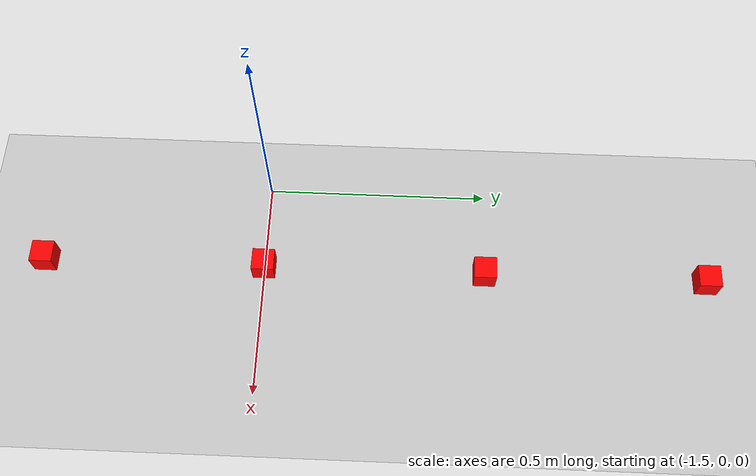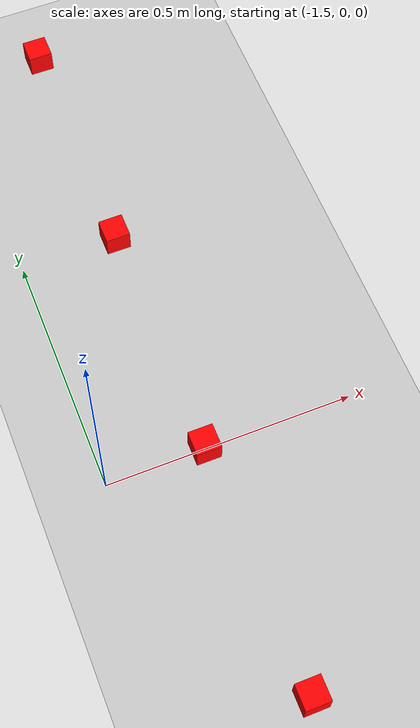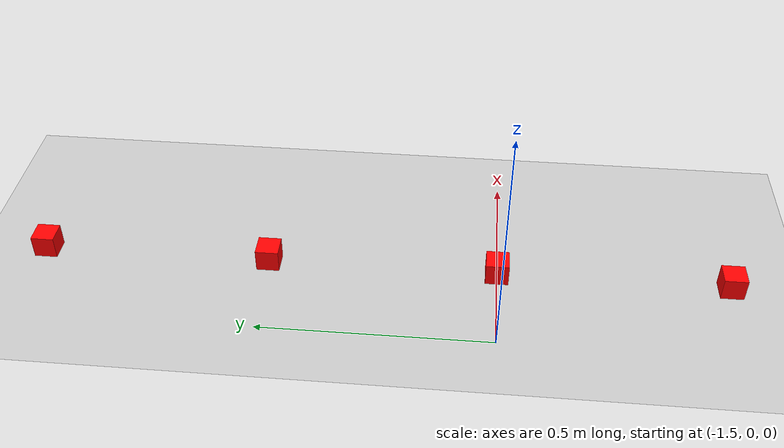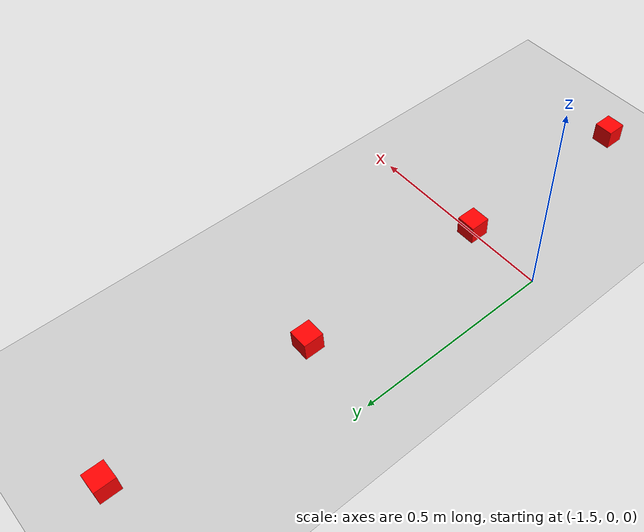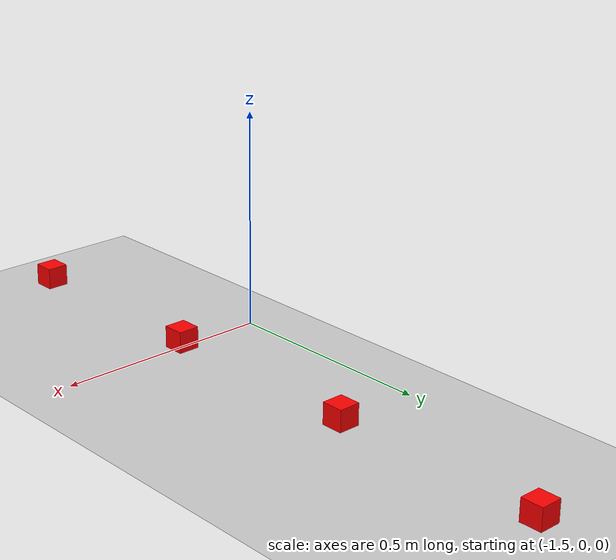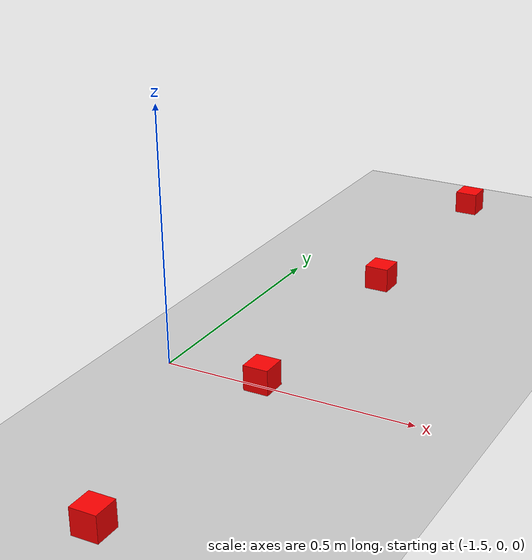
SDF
<?xml version="1.0" ?>
<sdf version="1.6">
  <world name="huerto_manzanas">
    <!-- Luz y suelo por defecto -->
    <include>
      <uri>model://sun</uri>
    </include>
    <include>
      <uri>model://ground_plane</uri>
    </include>

    <!-- Manzana 1 (Frente al robot) -->
    <model name="manzana_1">
      <pose>-1.30 -0.5 0.025 0 0 0</pose>
      <link name="link">
        <collision name="collision">
          <geometry><box><size>0.05 0.05 0.05</size></box></geometry>
        </collision>
        <visual name="visual">
          <geometry><box><size>0.05 0.05 0.05</size></box></geometry>
          <material><ambient>1 0 0 1</ambient><diffuse>1 0 0 1</diffuse></material>
        </visual>
      </link>
    </model>

    <!-- Manzana 2 (Tras girar a la izquierda, avanzar y encarar) -->
    <model name="manzana_2">
      <pose>-1.30 0 0.025 0 0 0</pose>
      <link name="link">
        <collision name="collision">
          <geometry><box><size>0.05 0.05 0.05</size></box></geometry>
        </collision>
        <visual name="visual">
          <geometry><box><size>0.05 0.05 0.05</size></box></geometry>
          <material><ambient>1 0 0 1</ambient><diffuse>1 0 0 1</diffuse></material>
        </visual>
      </link>
    </model>

    <!-- Manzana 3 (Tras girar a la izquierda, avanzar y encarar) -->
    <model name="manzana_3">
      <pose>-1.30 0.5 0.025 0 0 0</pose>
      <link name="link">
        <collision name="collision">
          <geometry><box><size>0.05 0.05 0.05</size></box></geometry>
        </collision>
        <visual name="visual">
          <geometry><box><size>0.05 0.05 0.05</size></box></geometry>
          <material><ambient>1 0 0 1</ambient><diffuse>1 0 0 1</diffuse></material>
        </visual>
      </link>
    </model>

    <!-- Manzana 4 (Tras girar a la izquierda, avanzar y encarar) -->
    <model name="manzana_4">
      <pose>-1.30 1.0 0.025 0 0 0</pose>
      <link name="link">
        <collision name="collision">
          <geometry><box><size>0.05 0.05 0.05</size></box></geometry>
        </collision>
        <visual name="visual">
          <geometry><box><size>0.05 0.05 0.05</size></box></geometry>
          <material><ambient>1 0 0 1</ambient><diffuse>1 0 0 1</diffuse></material>
        </visual>
      </link>
    </model>

  </world>
</sdf>
